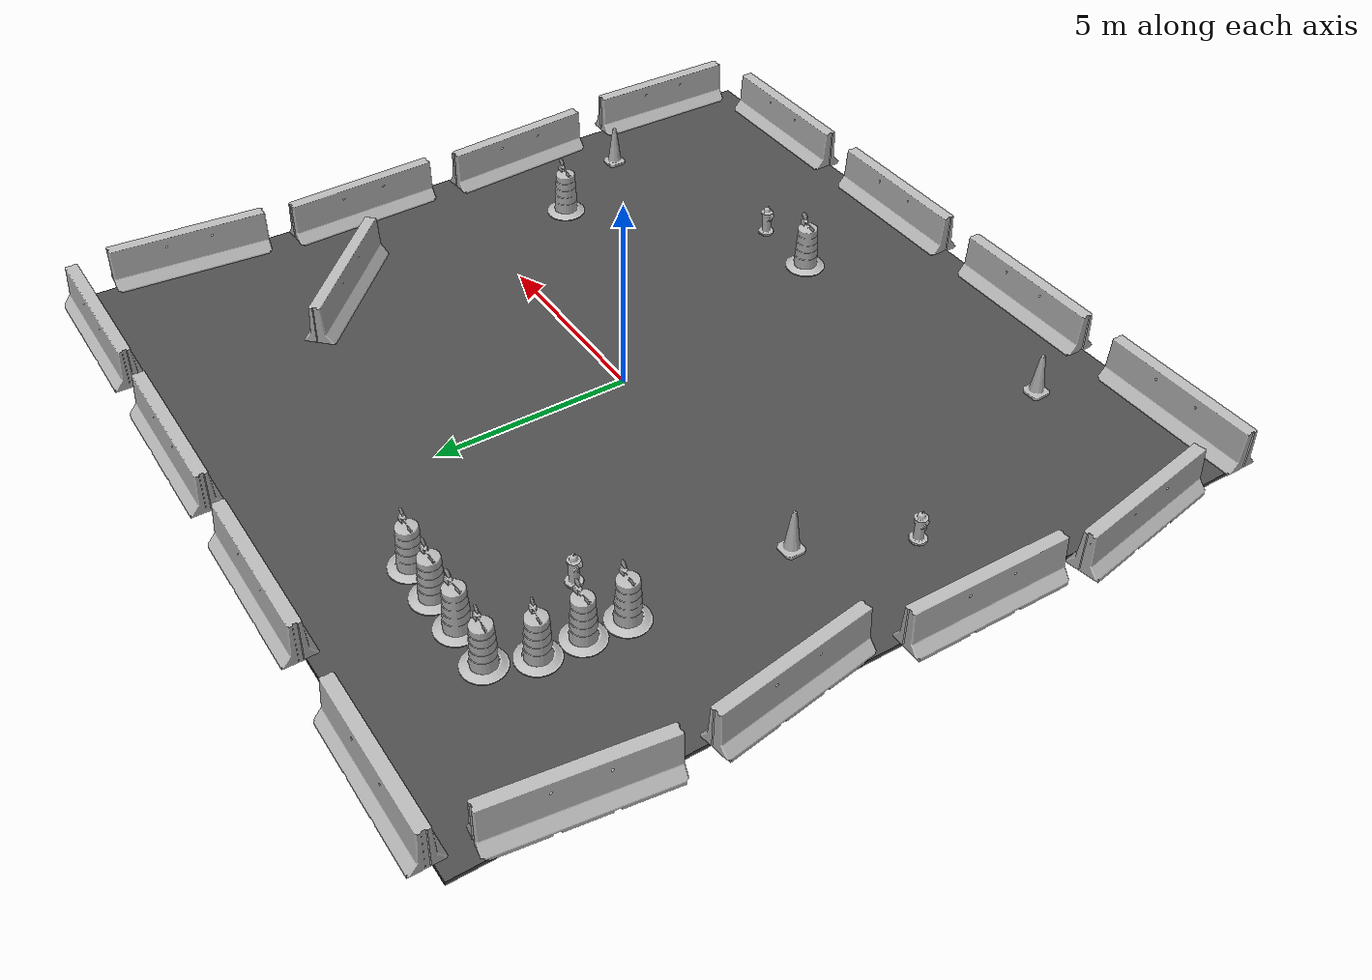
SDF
<sdf version="1.7">
 <world name="default">
  <light name="sun" type="directional">
   <pose>0 0 10 0 -0 0</pose>
   <diffuse>0.8 0.8 0.8 1</diffuse>
   <specular>0.2 0.2 0.2 1</specular>
   <attenuation>
    <range>1000</range>
    <constant>0.9</constant>
    <linear>0.01</linear>
    <quadratic>0.001</quadratic>
   </attenuation>
   <direction>-0.5 0.1 -0.9</direction>
   <spot><inner_angle>0</inner_angle><outer_angle>0</outer_angle><falloff>0</falloff></spot>
  </light>
  <physics type="ode">
   <max_step_size>0.01</max_step_size>
   <real_time_factor>1</real_time_factor>
   <real_time_update_rate>100</real_time_update_rate>
  </physics>
  <scene><ambient>0.4 0.4 0.4 1</ambient><background>0.7 0.7 0.7 1</background><shadows>1</shadows></scene>
  <model name="jersey_barrier">
   <static>1</static>
   <link name="link">
    <visual name="visual">
     <geometry><mesh><uri>model://jersey_barrier/meshes/jersey_barrier.dae</uri></mesh></geometry>
    </visual>
    <collision name="upright">
     <pose>0 0 0.5715 0 -0 0</pose>
     <geometry><box><size>4.06542 0.3063 1.143</size></box></geometry>
    </collision>
    <collision name="base">
     <pose>0 0 0.032258 0 -0 0</pose>
     <geometry><box><size>4.06542 0.8107 0.064516</size></box></geometry>
    </collision>
    <collision name="base2">
     <pose>0 0 0.1 0 -0 0</pose>
     <geometry><box><size>4.06542 0.65 0.1</size></box></geometry>
    </collision>
    <collision name="base3">
     <pose>0 0 0.2 0 -0 0</pose>
     <geometry><box><size>4.06542 0.5 0.1</size></box></geometry>
    </collision>
    <collision name="left-angle">
     <pose>0 -0.224 0.2401 0.9 -0 0</pose>
     <geometry><box><size>4.06542 0.5 0.064516</size></box></geometry>
    </collision>
    <collision name="right-angle">
     <pose>0 0.224 0.2401 -0.9 0 0</pose>
     <geometry><box><size>4.06542 0.5 0.064516</size></box></geometry>
    </collision>
    <velocity_decay><linear>0</linear><angular>0</angular></velocity_decay>
   </link>
   <pose>-8 -10 0 0 -0 0</pose>
  </model>
  <model name="jersey_barrier_0">
   <static>1</static>
   <link name="link">
    <visual name="visual">
     <geometry><mesh><uri>model://jersey_barrier/meshes/jersey_barrier.dae</uri></mesh></geometry>
    </visual>
    <collision name="upright">
     <pose>0 0 0.5715 0 -0 0</pose>
     <geometry><box><size>4.06542 0.3063 1.143</size></box></geometry>
    </collision>
    <collision name="base">
     <pose>0 0 0.032258 0 -0 0</pose>
     <geometry><box><size>4.06542 0.8107 0.064516</size></box></geometry>
    </collision>
    <collision name="base2">
     <pose>0 0 0.1 0 -0 0</pose>
     <geometry><box><size>4.06542 0.65 0.1</size></box></geometry>
    </collision>
    <collision name="base3">
     <pose>0 0 0.2 0 -0 0</pose>
     <geometry><box><size>4.06542 0.5 0.1</size></box></geometry>
    </collision>
    <collision name="left-angle">
     <pose>0 -0.224 0.2401 0.9 -0 0</pose>
     <geometry><box><size>4.06542 0.5 0.064516</size></box></geometry>
    </collision>
    <collision name="right-angle">
     <pose>0 0.224 0.2401 -0.9 0 0</pose>
     <geometry><box><size>4.06542 0.5 0.064516</size></box></geometry>
    </collision>
    <velocity_decay><linear>0</linear><angular>0</angular></velocity_decay>
   </link>
   <pose>-3 -10 0 0 -0 0</pose>
  </model>
  <model name="jersey_barrier_1">
   <static>1</static>
   <link name="link">
    <visual name="visual">
     <geometry><mesh><uri>model://jersey_barrier/meshes/jersey_barrier.dae</uri></mesh></geometry>
    </visual>
    <collision name="upright">
     <pose>0 0 0.5715 0 -0 0</pose>
     <geometry><box><size>4.06542 0.3063 1.143</size></box></geometry>
    </collision>
    <collision name="base">
     <pose>0 0 0.032258 0 -0 0</pose>
     <geometry><box><size>4.06542 0.8107 0.064516</size></box></geometry>
    </collision>
    <collision name="base2">
     <pose>0 0 0.1 0 -0 0</pose>
     <geometry><box><size>4.06542 0.65 0.1</size></box></geometry>
    </collision>
    <collision name="base3">
     <pose>0 0 0.2 0 -0 0</pose>
     <geometry><box><size>4.06542 0.5 0.1</size></box></geometry>
    </collision>
    <collision name="left-angle">
     <pose>0 -0.224 0.2401 0.9 -0 0</pose>
     <geometry><box><size>4.06542 0.5 0.064516</size></box></geometry>
    </collision>
    <collision name="right-angle">
     <pose>0 0.224 0.2401 -0.9 0 0</pose>
     <geometry><box><size>4.06542 0.5 0.064516</size></box></geometry>
    </collision>
    <velocity_decay><linear>0</linear><angular>0</angular></velocity_decay>
   </link>
   <pose>2 -10 0 0 -0 0</pose>
  </model>
  <model name="jersey_barrier_2">
   <static>1</static>
   <link name="link">
    <visual name="visual">
     <geometry><mesh><uri>model://jersey_barrier/meshes/jersey_barrier.dae</uri></mesh></geometry>
    </visual>
    <collision name="upright">
     <pose>0 0 0.5715 0 -0 0</pose>
     <geometry><box><size>4.06542 0.3063 1.143</size></box></geometry>
    </collision>
    <collision name="base">
     <pose>0 0 0.032258 0 -0 0</pose>
     <geometry><box><size>4.06542 0.8107 0.064516</size></box></geometry>
    </collision>
    <collision name="base2">
     <pose>0 0 0.1 0 -0 0</pose>
     <geometry><box><size>4.06542 0.65 0.1</size></box></geometry>
    </collision>
    <collision name="base3">
     <pose>0 0 0.2 0 -0 0</pose>
     <geometry><box><size>4.06542 0.5 0.1</size></box></geometry>
    </collision>
    <collision name="left-angle">
     <pose>0 -0.224 0.2401 0.9 -0 0</pose>
     <geometry><box><size>4.06542 0.5 0.064516</size></box></geometry>
    </collision>
    <collision name="right-angle">
     <pose>0 0.224 0.2401 -0.9 0 0</pose>
     <geometry><box><size>4.06542 0.5 0.064516</size></box></geometry>
    </collision>
    <velocity_decay><linear>0</linear><angular>0</angular></velocity_decay>
   </link>
   <pose>7 -10 0 0 -0 0</pose>
  </model>
  <model name="jersey_barrier_3">
   <static>1</static>
   <link name="link">
    <visual name="visual">
     <geometry><mesh><uri>model://jersey_barrier/meshes/jersey_barrier.dae</uri></mesh></geometry>
    </visual>
    <collision name="upright">
     <pose>0 0 0.5715 0 -0 0</pose>
     <geometry><box><size>4.06542 0.3063 1.143</size></box></geometry>
    </collision>
    <collision name="base">
     <pose>0 0 0.032258 0 -0 0</pose>
     <geometry><box><size>4.06542 0.8107 0.064516</size></box></geometry>
    </collision>
    <collision name="base2">
     <pose>0 0 0.1 0 -0 0</pose>
     <geometry><box><size>4.06542 0.65 0.1</size></box></geometry>
    </collision>
    <collision name="base3">
     <pose>0 0 0.2 0 -0 0</pose>
     <geometry><box><size>4.06542 0.5 0.1</size></box></geometry>
    </collision>
    <collision name="left-angle">
     <pose>0 -0.224 0.2401 0.9 -0 0</pose>
     <geometry><box><size>4.06542 0.5 0.064516</size></box></geometry>
    </collision>
    <collision name="right-angle">
     <pose>0 0.224 0.2401 -0.9 0 0</pose>
     <geometry><box><size>4.06542 0.5 0.064516</size></box></geometry>
    </collision>
    <velocity_decay><linear>0</linear><angular>0</angular></velocity_decay>
   </link>
   <pose>-7.50675 10 0 0 -0 0</pose>
  </model>
  <model name="jersey_barrier_4">
   <static>1</static>
   <link name="link">
    <visual name="visual">
     <geometry><mesh><uri>model://jersey_barrier/meshes/jersey_barrier.dae</uri></mesh></geometry>
    </visual>
    <collision name="upright">
     <pose>0 0 0.5715 0 -0 0</pose>
     <geometry><box><size>4.06542 0.3063 1.143</size></box></geometry>
    </collision>
    <collision name="base">
     <pose>0 0 0.032258 0 -0 0</pose>
     <geometry><box><size>4.06542 0.8107 0.064516</size></box></geometry>
    </collision>
    <collision name="base2">
     <pose>0 0 0.1 0 -0 0</pose>
     <geometry><box><size>4.06542 0.65 0.1</size></box></geometry>
    </collision>
    <collision name="base3">
     <pose>0 0 0.2 0 -0 0</pose>
     <geometry><box><size>4.06542 0.5 0.1</size></box></geometry>
    </collision>
    <collision name="left-angle">
     <pose>0 -0.224 0.2401 0.9 -0 0</pose>
     <geometry><box><size>4.06542 0.5 0.064516</size></box></geometry>
    </collision>
    <collision name="right-angle">
     <pose>0 0.224 0.2401 -0.9 0 0</pose>
     <geometry><box><size>4.06542 0.5 0.064516</size></box></geometry>
    </collision>
    <velocity_decay><linear>0</linear><angular>0</angular></velocity_decay>
   </link>
   <pose>-2 10 0 0 -0 0</pose>
  </model>
  <model name="jersey_barrier_5">
   <static>1</static>
   <link name="link">
    <visual name="visual">
     <geometry><mesh><uri>model://jersey_barrier/meshes/jersey_barrier.dae</uri></mesh></geometry>
    </visual>
    <collision name="upright">
     <pose>0 0 0.5715 0 -0 0</pose>
     <geometry><box><size>4.06542 0.3063 1.143</size></box></geometry>
    </collision>
    <collision name="base">
     <pose>0 0 0.032258 0 -0 0</pose>
     <geometry><box><size>4.06542 0.8107 0.064516</size></box></geometry>
    </collision>
    <collision name="base2">
     <pose>0 0 0.1 0 -0 0</pose>
     <geometry><box><size>4.06542 0.65 0.1</size></box></geometry>
    </collision>
    <collision name="base3">
     <pose>0 0 0.2 0 -0 0</pose>
     <geometry><box><size>4.06542 0.5 0.1</size></box></geometry>
    </collision>
    <collision name="left-angle">
     <pose>0 -0.224 0.2401 0.9 -0 0</pose>
     <geometry><box><size>4.06542 0.5 0.064516</size></box></geometry>
    </collision>
    <collision name="right-angle">
     <pose>0 0.224 0.2401 -0.9 0 0</pose>
     <geometry><box><size>4.06542 0.5 0.064516</size></box></geometry>
    </collision>
    <velocity_decay><linear>0</linear><angular>0</angular></velocity_decay>
   </link>
   <pose>3 10 0 0 -0 0</pose>
  </model>
  <model name="jersey_barrier_6">
   <static>1</static>
   <link name="link">
    <visual name="visual">
     <geometry><mesh><uri>model://jersey_barrier/meshes/jersey_barrier.dae</uri></mesh></geometry>
    </visual>
    <collision name="upright">
     <pose>0 0 0.5715 0 -0 0</pose>
     <geometry><box><size>4.06542 0.3063 1.143</size></box></geometry>
    </collision>
    <collision name="base">
     <pose>0 0 0.032258 0 -0 0</pose>
     <geometry><box><size>4.06542 0.8107 0.064516</size></box></geometry>
    </collision>
    <collision name="base2">
     <pose>0 0 0.1 0 -0 0</pose>
     <geometry><box><size>4.06542 0.65 0.1</size></box></geometry>
    </collision>
    <collision name="base3">
     <pose>0 0 0.2 0 -0 0</pose>
     <geometry><box><size>4.06542 0.5 0.1</size></box></geometry>
    </collision>
    <collision name="left-angle">
     <pose>0 -0.224 0.2401 0.9 -0 0</pose>
     <geometry><box><size>4.06542 0.5 0.064516</size></box></geometry>
    </collision>
    <collision name="right-angle">
     <pose>0 0.224 0.2401 -0.9 0 0</pose>
     <geometry><box><size>4.06542 0.5 0.064516</size></box></geometry>
    </collision>
    <velocity_decay><linear>0</linear><angular>0</angular></velocity_decay>
   </link>
   <pose>8 10 0 0 -0 0</pose>
  </model>
  <model name="jersey_barrier_7">
   <static>1</static>
   <link name="link">
    <visual name="visual">
     <geometry><mesh><uri>model://jersey_barrier/meshes/jersey_barrier.dae</uri></mesh></geometry>
    </visual>
    <collision name="upright">
     <pose>0 0 0.5715 0 -0 0</pose>
     <geometry><box><size>4.06542 0.3063 1.143</size></box></geometry>
    </collision>
    <collision name="base">
     <pose>0 0 0.032258 0 -0 0</pose>
     <geometry><box><size>4.06542 0.8107 0.064516</size></box></geometry>
    </collision>
    <collision name="base2">
     <pose>0 0 0.1 0 -0 0</pose>
     <geometry><box><size>4.06542 0.65 0.1</size></box></geometry>
    </collision>
    <collision name="base3">
     <pose>0 0 0.2 0 -0 0</pose>
     <geometry><box><size>4.06542 0.5 0.1</size></box></geometry>
    </collision>
    <collision name="left-angle">
     <pose>0 -0.224 0.2401 0.9 -0 0</pose>
     <geometry><box><size>4.06542 0.5 0.064516</size></box></geometry>
    </collision>
    <collision name="right-angle">
     <pose>0 0.224 0.2401 -0.9 0 0</pose>
     <geometry><box><size>4.06542 0.5 0.064516</size></box></geometry>
    </collision>
    <velocity_decay><linear>0</linear><angular>0</angular></velocity_decay>
   </link>
   <pose>9.74902 -2.57759 0 0 -0 1.64</pose>
  </model>
  <model name="jersey_barrier_8">
   <static>1</static>
   <link name="link">
    <visual name="visual">
     <geometry><mesh><uri>model://jersey_barrier/meshes/jersey_barrier.dae</uri></mesh></geometry>
    </visual>
    <collision name="upright">
     <pose>0 0 0.5715 0 -0 0</pose>
     <geometry><box><size>4.06542 0.3063 1.143</size></box></geometry>
    </collision>
    <collision name="base">
     <pose>0 0 0.032258 0 -0 0</pose>
     <geometry><box><size>4.06542 0.8107 0.064516</size></box></geometry>
    </collision>
    <collision name="base2">
     <pose>0 0 0.1 0 -0 0</pose>
     <geometry><box><size>4.06542 0.65 0.1</size></box></geometry>
    </collision>
    <collision name="base3">
     <pose>0 0 0.2 0 -0 0</pose>
     <geometry><box><size>4.06542 0.5 0.1</size></box></geometry>
    </collision>
    <collision name="left-angle">
     <pose>0 -0.224 0.2401 0.9 -0 0</pose>
     <geometry><box><size>4.06542 0.5 0.064516</size></box></geometry>
    </collision>
    <collision name="right-angle">
     <pose>0 0.224 0.2401 -0.9 0 0</pose>
     <geometry><box><size>4.06542 0.5 0.064516</size></box></geometry>
    </collision>
    <velocity_decay><linear>0</linear><angular>0</angular></velocity_decay>
   </link>
   <pose>9.70141 2.24369 0 0 -0 1.6</pose>
  </model>
  <model name="jersey_barrier_9">
   <static>1</static>
   <link name="link">
    <visual name="visual">
     <geometry><mesh><uri>model://jersey_barrier/meshes/jersey_barrier.dae</uri></mesh></geometry>
    </visual>
    <collision name="upright">
     <pose>0 0 0.5715 0 -0 0</pose>
     <geometry><box><size>4.06542 0.3063 1.143</size></box></geometry>
    </collision>
    <collision name="base">
     <pose>0 0 0.032258 0 -0 0</pose>
     <geometry><box><size>4.06542 0.8107 0.064516</size></box></geometry>
    </collision>
    <collision name="base2">
     <pose>0 0 0.1 0 -0 0</pose>
     <geometry><box><size>4.06542 0.65 0.1</size></box></geometry>
    </collision>
    <collision name="base3">
     <pose>0 0 0.2 0 -0 0</pose>
     <geometry><box><size>4.06542 0.5 0.1</size></box></geometry>
    </collision>
    <collision name="left-angle">
     <pose>0 -0.224 0.2401 0.9 -0 0</pose>
     <geometry><box><size>4.06542 0.5 0.064516</size></box></geometry>
    </collision>
    <collision name="right-angle">
     <pose>0 0.224 0.2401 -0.9 0 0</pose>
     <geometry><box><size>4.06542 0.5 0.064516</size></box></geometry>
    </collision>
    <velocity_decay><linear>0</linear><angular>0</angular></velocity_decay>
   </link>
   <pose>-10.0607 -6.69856 0 0 0 -1.4</pose>
  </model>
  <model name="jersey_barrier_10">
   <static>1</static>
   <link name="link">
    <visual name="visual">
     <geometry><mesh><uri>model://jersey_barrier/meshes/jersey_barrier.dae</uri></mesh></geometry>
    </visual>
    <collision name="upright">
     <pose>0 0 0.5715 0 -0 0</pose>
     <geometry><box><size>4.06542 0.3063 1.143</size></box></geometry>
    </collision>
    <collision name="base">
     <pose>0 0 0.032258 0 -0 0</pose>
     <geometry><box><size>4.06542 0.8107 0.064516</size></box></geometry>
    </collision>
    <collision name="base2">
     <pose>0 0 0.1 0 -0 0</pose>
     <geometry><box><size>4.06542 0.65 0.1</size></box></geometry>
    </collision>
    <collision name="base3">
     <pose>0 0 0.2 0 -0 0</pose>
     <geometry><box><size>4.06542 0.5 0.1</size></box></geometry>
    </collision>
    <collision name="left-angle">
     <pose>0 -0.224 0.2401 0.9 -0 0</pose>
     <geometry><box><size>4.06542 0.5 0.064516</size></box></geometry>
    </collision>
    <collision name="right-angle">
     <pose>0 0.224 0.2401 -0.9 0 0</pose>
     <geometry><box><size>4.06542 0.5 0.064516</size></box></geometry>
    </collision>
    <velocity_decay><linear>0</linear><angular>0</angular></velocity_decay>
   </link>
   <pose>-10.0774 -2.27159 0 0 -0 1.56</pose>
  </model>
  <model name="jersey_barrier_11">
   <static>1</static>
   <link name="link">
    <visual name="visual">
     <geometry><mesh><uri>model://jersey_barrier/meshes/jersey_barrier.dae</uri></mesh></geometry>
    </visual>
    <collision name="upright">
     <pose>0 0 0.5715 0 -0 0</pose>
     <geometry><box><size>4.06542 0.3063 1.143</size></box></geometry>
    </collision>
    <collision name="base">
     <pose>0 0 0.032258 0 -0 0</pose>
     <geometry><box><size>4.06542 0.8107 0.064516</size></box></geometry>
    </collision>
    <collision name="base2">
     <pose>0 0 0.1 0 -0 0</pose>
     <geometry><box><size>4.06542 0.65 0.1</size></box></geometry>
    </collision>
    <collision name="base3">
     <pose>0 0 0.2 0 -0 0</pose>
     <geometry><box><size>4.06542 0.5 0.1</size></box></geometry>
    </collision>
    <collision name="left-angle">
     <pose>0 -0.224 0.2401 0.9 -0 0</pose>
     <geometry><box><size>4.06542 0.5 0.064516</size></box></geometry>
    </collision>
    <collision name="right-angle">
     <pose>0 0.224 0.2401 -0.9 0 0</pose>
     <geometry><box><size>4.06542 0.5 0.064516</size></box></geometry>
    </collision>
    <velocity_decay><linear>0</linear><angular>0</angular></velocity_decay>
   </link>
   <pose>-9.77013 2.34791 0 0 -0 1.72</pose>
  </model>
  <model name="jersey_barrier_12">
   <static>1</static>
   <link name="link">
    <visual name="visual">
     <geometry><mesh><uri>model://jersey_barrier/meshes/jersey_barrier.dae</uri></mesh></geometry>
    </visual>
    <collision name="upright">
     <pose>0 0 0.5715 0 -0 0</pose>
     <geometry><box><size>4.06542 0.3063 1.143</size></box></geometry>
    </collision>
    <collision name="base">
     <pose>0 0 0.032258 0 -0 0</pose>
     <geometry><box><size>4.06542 0.8107 0.064516</size></box></geometry>
    </collision>
    <collision name="base2">
     <pose>0 0 0.1 0 -0 0</pose>
     <geometry><box><size>4.06542 0.65 0.1</size></box></geometry>
    </collision>
    <collision name="base3">
     <pose>0 0 0.2 0 -0 0</pose>
     <geometry><box><size>4.06542 0.5 0.1</size></box></geometry>
    </collision>
    <collision name="left-angle">
     <pose>0 -0.224 0.2401 0.9 -0 0</pose>
     <geometry><box><size>4.06542 0.5 0.064516</size></box></geometry>
    </collision>
    <collision name="right-angle">
     <pose>0 0.224 0.2401 -0.9 0 0</pose>
     <geometry><box><size>4.06542 0.5 0.064516</size></box></geometry>
    </collision>
    <velocity_decay><linear>0</linear><angular>0</angular></velocity_decay>
   </link>
   <pose>10.0879 -7.62159 0 0 -0 1.56</pose>
  </model>
  <model name="jersey_barrier_13">
   <static>1</static>
   <link name="link">
    <visual name="visual">
     <geometry><mesh><uri>model://jersey_barrier/meshes/jersey_barrier.dae</uri></mesh></geometry>
    </visual>
    <collision name="upright">
     <pose>0 0 0.5715 0 -0 0</pose>
     <geometry><box><size>4.06542 0.3063 1.143</size></box></geometry>
    </collision>
    <collision name="base">
     <pose>0 0 0.032258 0 -0 0</pose>
     <geometry><box><size>4.06542 0.8107 0.064516</size></box></geometry>
    </collision>
    <collision name="base2">
     <pose>0 0 0.1 0 -0 0</pose>
     <geometry><box><size>4.06542 0.65 0.1</size></box></geometry>
    </collision>
    <collision name="base3">
     <pose>0 0 0.2 0 -0 0</pose>
     <geometry><box><size>4.06542 0.5 0.1</size></box></geometry>
    </collision>
    <collision name="left-angle">
     <pose>0 -0.224 0.2401 0.9 -0 0</pose>
     <geometry><box><size>4.06542 0.5 0.064516</size></box></geometry>
    </collision>
    <collision name="right-angle">
     <pose>0 0.224 0.2401 -0.9 0 0</pose>
     <geometry><box><size>4.06542 0.5 0.064516</size></box></geometry>
    </collision>
    <velocity_decay><linear>0</linear><angular>0</angular></velocity_decay>
   </link>
   <pose>10 7 0 0 -0 1.48</pose>
  </model>
  <model name="jersey_barrier_14">
   <static>1</static>
   <link name="link">
    <visual name="visual">
     <geometry><mesh><uri>model://jersey_barrier/meshes/jersey_barrier.dae</uri></mesh></geometry>
    </visual>
    <collision name="upright">
     <pose>0 0 0.5715 0 -0 0</pose>
     <geometry><box><size>4.06542 0.3063 1.143</size></box></geometry>
    </collision>
    <collision name="base">
     <pose>0 0 0.032258 0 -0 0</pose>
     <geometry><box><size>4.06542 0.8107 0.064516</size></box></geometry>
    </collision>
    <collision name="base2">
     <pose>0 0 0.1 0 -0 0</pose>
     <geometry><box><size>4.06542 0.65 0.1</size></box></geometry>
    </collision>
    <collision name="base3">
     <pose>0 0 0.2 0 -0 0</pose>
     <geometry><box><size>4.06542 0.5 0.1</size></box></geometry>
    </collision>
    <collision name="left-angle">
     <pose>0 -0.224 0.2401 0.9 -0 0</pose>
     <geometry><box><size>4.06542 0.5 0.064516</size></box></geometry>
    </collision>
    <collision name="right-angle">
     <pose>0 0.224 0.2401 -0.9 0 0</pose>
     <geometry><box><size>4.06542 0.5 0.064516</size></box></geometry>
    </collision>
    <velocity_decay><linear>0</linear><angular>0</angular></velocity_decay>
   </link>
   <pose>-9.76961 7.08915 0 0 -0 1.44</pose>
  </model>
  <model name="fire_hydrant">
   <static>1</static>
   <link name="link">
    <collision name="collision">
     <geometry><mesh><uri>model://fire_hydrant/meshes/fire_hydrant.dae</uri></mesh></geometry>
    </collision>
    <visual name="visual">
     <geometry><mesh><uri>model://fire_hydrant/meshes/fire_hydrant.dae</uri></mesh></geometry>
    </visual>
    <velocity_decay><linear>0</linear><angular>0</angular></velocity_decay>
   </link>
   <pose>3.18024 -6.51118 0 0 -0 0</pose>
  </model>
  <model name="fire_hydrant_0">
   <static>1</static>
   <link name="link">
    <collision name="collision">
     <geometry><mesh><uri>model://fire_hydrant/meshes/fire_hydrant.dae</uri></mesh></geometry>
    </collision>
    <visual name="visual">
     <geometry><mesh><uri>model://fire_hydrant/meshes/fire_hydrant.dae</uri></mesh></geometry>
    </visual>
    <velocity_decay><linear>0</linear><angular>0</angular></velocity_decay>
   </link>
   <pose>-5.08289 4.39968 0 0 -0 0</pose>
  </model>
  <model name="fire_hydrant_1">
   <static>1</static>
   <link name="link">
    <collision name="collision">
     <geometry><mesh><uri>model://fire_hydrant/meshes/fire_hydrant.dae</uri></mesh></geometry>
    </collision>
    <visual name="visual">
     <geometry><mesh><uri>model://fire_hydrant/meshes/fire_hydrant.dae</uri></mesh></geometry>
    </visual>
    <velocity_decay><linear>0</linear><angular>0</angular></velocity_decay>
   </link>
   <pose>-7.90686 -2.41363 0 0 -0 0</pose>
  </model>
  <model name="jersey_barrier_15">
   <static>1</static>
   <link name="link">
    <visual name="visual">
     <geometry><mesh><uri>model://jersey_barrier/meshes/jersey_barrier.dae</uri></mesh></geometry>
    </visual>
    <collision name="upright">
     <pose>0 0 0.5715 0 -0 0</pose>
     <geometry><box><size>4.06542 0.3063 1.143</size></box></geometry>
    </collision>
    <collision name="base">
     <pose>0 0 0.032258 0 -0 0</pose>
     <geometry><box><size>4.06542 0.8107 0.064516</size></box></geometry>
    </collision>
    <collision name="base2">
     <pose>0 0 0.1 0 -0 0</pose>
     <geometry><box><size>4.06542 0.65 0.1</size></box></geometry>
    </collision>
    <collision name="base3">
     <pose>0 0 0.2 0 -0 0</pose>
     <geometry><box><size>4.06542 0.5 0.1</size></box></geometry>
    </collision>
    <collision name="left-angle">
     <pose>0 -0.224 0.2401 0.9 -0 0</pose>
     <geometry><box><size>4.06542 0.5 0.064516</size></box></geometry>
    </collision>
    <collision name="right-angle">
     <pose>0 0.224 0.2401 -0.9 0 0</pose>
     <geometry><box><size>4.06542 0.5 0.064516</size></box></geometry>
    </collision>
    <velocity_decay><linear>0</linear><angular>0</angular></velocity_decay>
   </link>
   <pose>6.57653 4.15307 0 0 -0 2.36</pose>
  </model>
  <model name="Construction Cone">
   <link name="link">
    <collision name="collision">
     <geometry>
      <mesh><scale>10 10 10</scale><uri>model://construction_cone/meshes/construction_cone.dae</uri></mesh>
     </geometry>
    </collision>
    <visual name="visual">
     <geometry>
      <mesh><scale>10 10 10</scale><uri>model://construction_cone/meshes/construction_cone.dae</uri></mesh>
     </geometry>
    </visual>
    <velocity_decay><linear>0</linear><angular>0</angular></velocity_decay>
    <inertial>
     <inertia><ixx>1</ixx><ixy>0</ixy><ixz>0</ixz><iyy>1</iyy><iyz>0</iyz><izz>1</izz></inertia>
     <mass>1</mass>
    </inertial>
   </link>
   <pose>-5.59121 -8 0.049102 3e-06 -1e-05 4e-06</pose>
   <static>0</static>
  </model>
  <model name="Construction Barrel">
   <link name="link">
    <inertial>
     <pose>0 0 0.4 0 -0 0</pose>
     <mass>500</mass>
     <inertia><ixx>51.2096</ixx><iyy>51.2096</iyy><izz>25</izz><ixy>0</ixy><ixz>0</ixz><iyz>0</iyz></inertia>
    </inertial>
    <collision name="collision">
     <geometry><mesh><uri>model://construction_barrel/meshes/construction_barrel.dae</uri></mesh></geometry>
    </collision>
    <visual name="visual">
     <geometry><mesh><uri>model://construction_barrel/meshes/construction_barrel.dae</uri></mesh></geometry>
    </visual>
    <velocity_decay><linear>0</linear><angular>0</angular></velocity_decay>
   </link>
   <pose>7.0001 -2.54623 0.049886 0.000463 -1e-05 0.000237</pose>
   <static>0</static>
  </model>
  <model name="Construction Cone_0">
   <link name="link">
    <collision name="collision">
     <geometry>
      <mesh><scale>10 10 10</scale><uri>model://construction_cone/meshes/construction_cone.dae</uri></mesh>
     </geometry>
    </collision>
    <visual name="visual">
     <geometry>
      <mesh><scale>10 10 10</scale><uri>model://construction_cone/meshes/construction_cone.dae</uri></mesh>
     </geometry>
    </visual>
    <velocity_decay><linear>0</linear><angular>0</angular></velocity_decay>
    <inertial>
     <inertia><ixx>1</ixx><ixy>0</ixy><ixz>0</ixz><iyy>1</iyy><iyz>0</iyz><izz>1</izz></inertia>
     <mass>1</mass>
    </inertial>
   </link>
   <pose>-6.67211 0.005724 0.049102 3e-06 -1e-05 -0.007008</pose>
   <static>0</static>
  </model>
  <model name="Construction Barrel_0">
   <link name="link">
    <inertial>
     <pose>0 0 0.4 0 -0 0</pose>
     <mass>500</mass>
     <inertia><ixx>51.2096</ixx><iyy>51.2096</iyy><izz>25</izz><ixy>0</ixy><ixz>0</ixz><iyz>0</iyz></inertia>
    </inertial>
    <collision name="collision">
     <geometry><mesh><uri>model://construction_barrel/meshes/construction_barrel.dae</uri></mesh></geometry>
    </collision>
    <visual name="visual">
     <geometry><mesh><uri>model://construction_barrel/meshes/construction_barrel.dae</uri></mesh></geometry>
    </visual>
    <velocity_decay><linear>0</linear><angular>0</angular></velocity_decay>
   </link>
   <pose>1.45182 -6.51117 0.049907 -0.000183 -0.000363 -0.000123</pose>
   <static>0</static>
  </model>
  <model name="asphalt_plane">
   <static>1</static>
   <link name="link">
    <collision name="collision"><geometry><box><size>20 20 0.1</size></box></geometry></collision>
    <visual name="visual">
     <cast_shadows>0</cast_shadows>
     <geometry><box><size>20 20 0.1</size></box></geometry>
     <material>
      <script>
       <uri>model://asphalt_plane/materials/scripts</uri>
       <uri>model://asphalt_plane/materials/textures</uri>
       <name>vrc/asphalt</name>
      </script>
     </material>
    </visual>
    <velocity_decay><linear>0</linear><angular>0</angular></velocity_decay>
   </link>
   <pose>0.076733 -0.110379 0 0 -0 0</pose>
  </model>
  <model name="Construction Barrel_1">
   <link name="link">
    <inertial>
     <pose>0 0 0.4 0 -0 0</pose>
     <mass>500</mass>
     <inertia><ixx>51.2096</ixx><iyy>51.2096</iyy><izz>25</izz><ixy>0</ixy><ixz>0</ixz><iyz>0</iyz></inertia>
    </inertial>
    <collision name="collision">
     <geometry><mesh><uri>model://construction_barrel/meshes/construction_barrel.dae</uri></mesh></geometry>
    </collision>
    <visual name="visual">
     <geometry><mesh><uri>model://construction_barrel/meshes/construction_barrel.dae</uri></mesh></geometry>
    </visual>
    <velocity_decay><linear>0</linear><angular>0</angular></velocity_decay>
   </link>
   <pose>-6.50457 3.9829 0.049909 0.000388 8.2e-05 -0.009515</pose>
   <static>0</static>
  </model>
  <model name="Construction Barrel_2">
   <link name="link">
    <inertial>
     <pose>0 0 0.4 0 -0 0</pose>
     <mass>500</mass>
     <inertia><ixx>51.2096</ixx><iyy>51.2096</iyy><izz>25</izz><ixy>0</ixy><ixz>0</ixz><iyz>0</iyz></inertia>
    </inertial>
    <collision name="collision">
     <geometry><mesh><uri>model://construction_barrel/meshes/construction_barrel.dae</uri></mesh></geometry>
    </collision>
    <visual name="visual">
     <geometry><mesh><uri>model://construction_barrel/meshes/construction_barrel.dae</uri></mesh></geometry>
    </visual>
    <velocity_decay><linear>0</linear><angular>0</angular></velocity_decay>
   </link>
   <pose>-6.45059 4.99651 0.04989 -0.000216 -0.000398 0.064857</pose>
   <static>0</static>
  </model>
  <model name="Construction Barrel_3">
   <link name="link">
    <inertial>
     <pose>0 0 0.4 0 -0 0</pose>
     <mass>500</mass>
     <inertia><ixx>51.2096</ixx><iyy>51.2096</iyy><izz>25</izz><ixy>0</ixy><ixz>0</ixz><iyz>0</iyz></inertia>
    </inertial>
    <collision name="collision">
     <geometry><mesh><uri>model://construction_barrel/meshes/construction_barrel.dae</uri></mesh></geometry>
    </collision>
    <visual name="visual">
     <geometry><mesh><uri>model://construction_barrel/meshes/construction_barrel.dae</uri></mesh></geometry>
    </visual>
    <velocity_decay><linear>0</linear><angular>0</angular></velocity_decay>
   </link>
   <pose>-6.40167 6.01126 0.049863 -0.000144 -0.000499 -0.120758</pose>
   <static>0</static>
  </model>
  <model name="Construction Barrel_4">
   <link name="link">
    <inertial>
     <pose>0 0 0.4 0 -0 0</pose>
     <mass>500</mass>
     <inertia><ixx>51.2096</ixx><iyy>51.2096</iyy><izz>25</izz><ixy>0</ixy><ixz>0</ixz><iyz>0</iyz></inertia>
    </inertial>
    <collision name="collision">
     <geometry><mesh><uri>model://construction_barrel/meshes/construction_barrel.dae</uri></mesh></geometry>
    </collision>
    <visual name="visual">
     <geometry><mesh><uri>model://construction_barrel/meshes/construction_barrel.dae</uri></mesh></geometry>
    </visual>
    <velocity_decay><linear>0</linear><angular>0</angular></velocity_decay>
   </link>
   <pose>-6.00614 7.00906 0.0499 0.000408 9.3e-05 -0.049503</pose>
   <static>0</static>
  </model>
  <model name="Construction Barrel_5">
   <link name="link">
    <inertial>
     <pose>0 0 0.4 0 -0 0</pose>
     <mass>500</mass>
     <inertia><ixx>51.2096</ixx><iyy>51.2096</iyy><izz>25</izz><ixy>0</ixy><ixz>0</ixz><iyz>0</iyz></inertia>
    </inertial>
    <collision name="collision">
     <geometry><mesh><uri>model://construction_barrel/meshes/construction_barrel.dae</uri></mesh></geometry>
    </collision>
    <visual name="visual">
     <geometry><mesh><uri>model://construction_barrel/meshes/construction_barrel.dae</uri></mesh></geometry>
    </visual>
    <velocity_decay><linear>0</linear><angular>0</angular></velocity_decay>
   </link>
   <pose>-4.87589 7.00792 0.049871 0.000431 0.000239 0.145995</pose>
   <static>0</static>
  </model>
  <model name="Construction Barrel_6">
   <link name="link">
    <inertial>
     <pose>0 0 0.4 0 -0 0</pose>
     <mass>500</mass>
     <inertia><ixx>51.2096</ixx><iyy>51.2096</iyy><izz>25</izz><ixy>0</ixy><ixz>0</ixz><iyz>0</iyz></inertia>
    </inertial>
    <collision name="collision">
     <geometry><mesh><uri>model://construction_barrel/meshes/construction_barrel.dae</uri></mesh></geometry>
    </collision>
    <visual name="visual">
     <geometry><mesh><uri>model://construction_barrel/meshes/construction_barrel.dae</uri></mesh></geometry>
    </visual>
    <velocity_decay><linear>0</linear><angular>0</angular></velocity_decay>
   </link>
   <pose>-3.86097 7.0454 0.049851 -0.000164 -0.000475 0.035729</pose>
   <static>0</static>
  </model>
  <model name="Construction Barrel_7">
   <link name="link">
    <inertial>
     <pose>0 0 0.4 0 -0 0</pose>
     <mass>500</mass>
     <inertia><ixx>51.2096</ixx><iyy>51.2096</iyy><izz>25</izz><ixy>0</ixy><ixz>0</ixz><iyz>0</iyz></inertia>
    </inertial>
    <collision name="collision">
     <geometry><mesh><uri>model://construction_barrel/meshes/construction_barrel.dae</uri></mesh></geometry>
    </collision>
    <visual name="visual">
     <geometry><mesh><uri>model://construction_barrel/meshes/construction_barrel.dae</uri></mesh></geometry>
    </visual>
    <velocity_decay><linear>0</linear><angular>0</angular></velocity_decay>
   </link>
   <pose>-2.84383 7.03471 0.049916 -0.000166 -0.000342 0.003442</pose>
   <static>0</static>
  </model>
  <model name="Construction Cone_1">
   <link name="link">
    <collision name="collision">
     <geometry>
      <mesh><scale>10 10 10</scale><uri>model://construction_cone/meshes/construction_cone.dae</uri></mesh>
     </geometry>
    </collision>
    <visual name="visual">
     <geometry>
      <mesh><scale>10 10 10</scale><uri>model://construction_cone/meshes/construction_cone.dae</uri></mesh>
     </geometry>
    </visual>
    <velocity_decay><linear>0</linear><angular>0</angular></velocity_decay>
    <inertial>
     <inertia><ixx>1</ixx><ixy>0</ixy><ixz>0</ixz><iyy>1</iyy><iyz>0</iyz><izz>1</izz></inertia>
     <mass>1</mass>
    </inertial>
   </link>
   <pose>8.42887 -5 0.049102 3e-06 -1e-05 4e-06</pose>
   <static>0</static>
  </model>
  <gravity>0 0 -9.8</gravity>
  <magnetic_field>6e-06 2.3e-05 -4.2e-05</magnetic_field>
  <atmosphere type="adiabatic"/>
  <spherical_coordinates>
   <surface_model>EARTH_WGS84</surface_model>
   <latitude_deg>0</latitude_deg>
   <longitude_deg>0</longitude_deg>
   <elevation>0</elevation>
   <heading_deg>0</heading_deg>
  </spherical_coordinates>
 </world>
</sdf>
